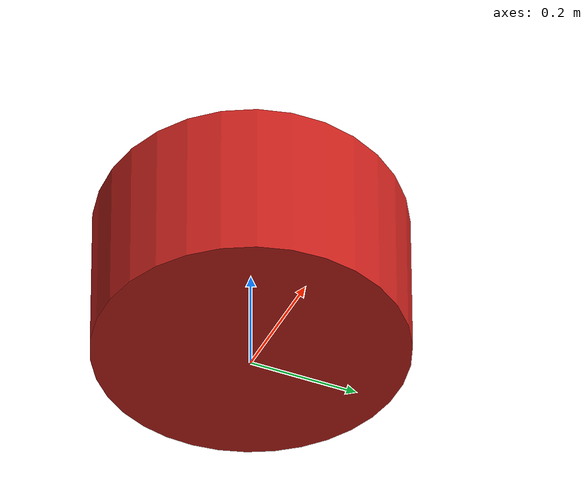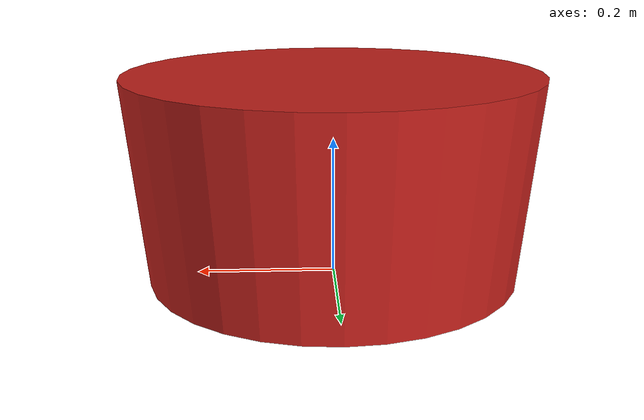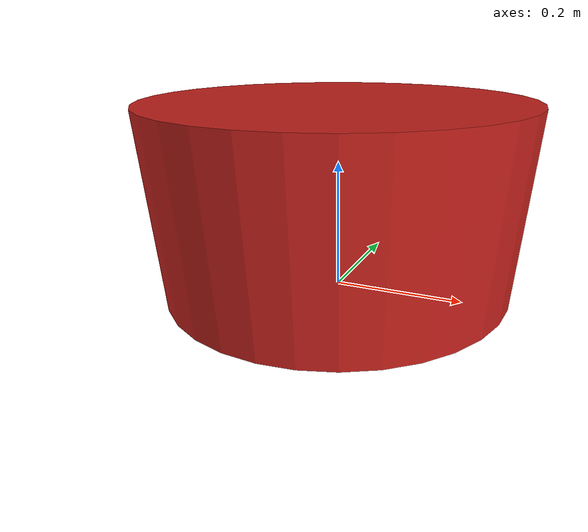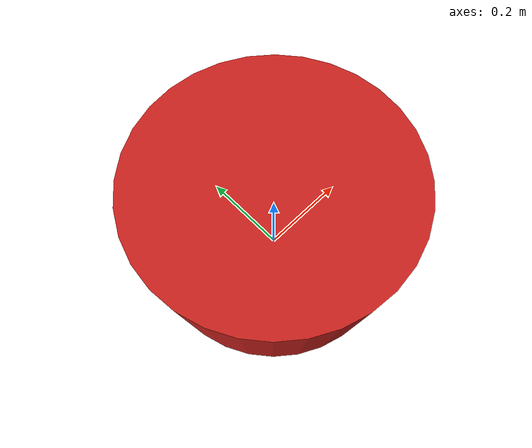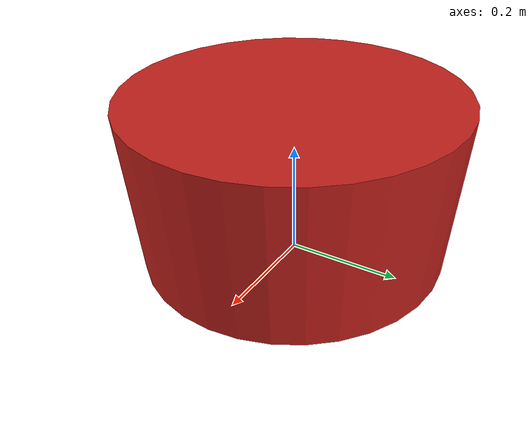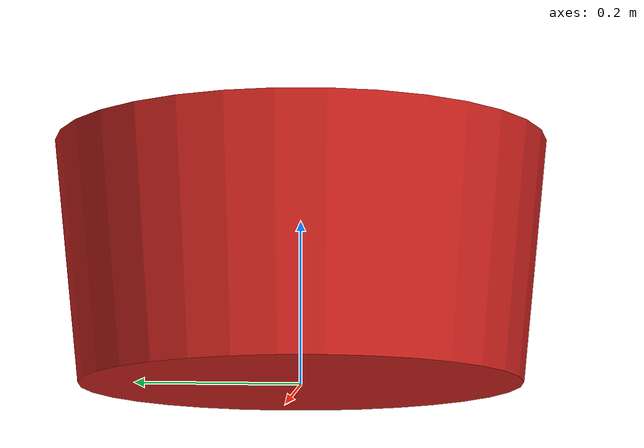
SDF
<?xml version="1.0"?>
<sdf version="1.7">
  <model name="red_drum">
    <static>1</static>
    <allow_auto_disable>1</allow_auto_disable>

    <link name="link_2">
      <inertial>
        <mass>1</mass>
        <inertia>
          <ixx>0.166667</ixx><ixy>0</ixy><ixz>0</ixz>
          <iyy>0.166667</iyy><iyz>0</iyz>
          <izz>0.166667</izz>
        </inertia>
        <pose>0 0 0 0 0 0</pose>
      </inertial>
      <pose>0 0 -0.0433 1.5708 0 0</pose>
      <gravity>1</gravity>
      <self_collide>0</self_collide>

      <visual name="visual">
        <geometry>
          <mesh>
            <uri>model://red_drum/drum.obj</uri>
            <scale>0.2698 0.2698 0.2698</scale>
          </mesh>
        </geometry>
        <material>
          <ambient>0.24 0.04 0.04 1</ambient>
          <diffuse>0.78 0.13 0.11 1</diffuse>
          <specular>0.04 0.04 0.04 1</specular>
          <emissive>0 0 0 1</emissive>
        </material>
      </visual>

      <collision name="collision">
        <geometry>
          <mesh>
            <uri>model://red_drum/drum.obj</uri>
            <scale>0.2698 0.2698 0.2698</scale>
          </mesh>
        </geometry>
        <surface>
          <friction><ode><mu>1</mu><mu2>1</mu2></ode></friction>
        </surface>
      </collision>
    </link>
  </model>
</sdf>
